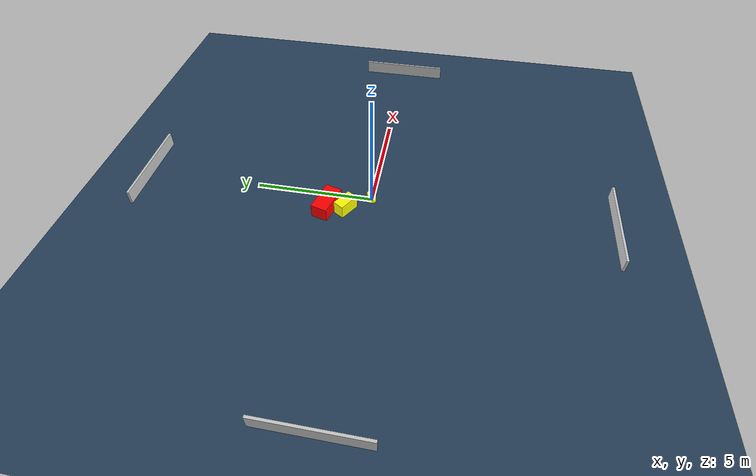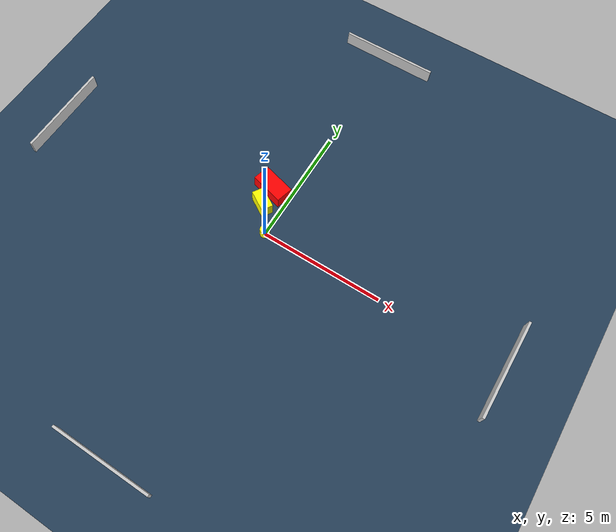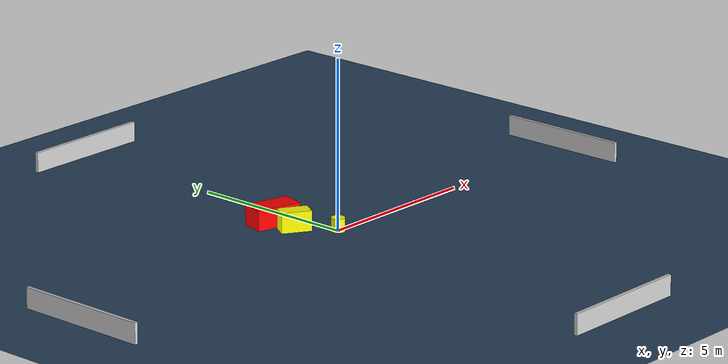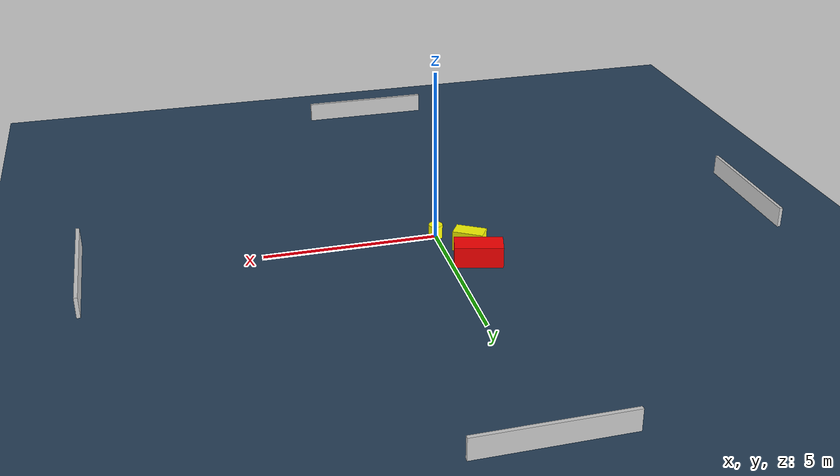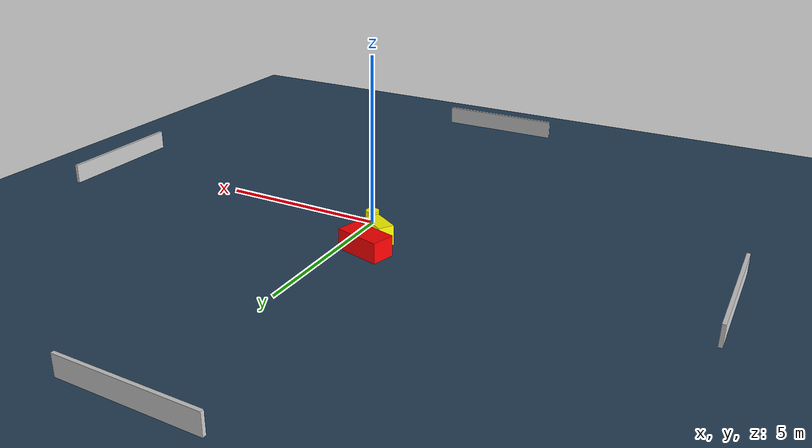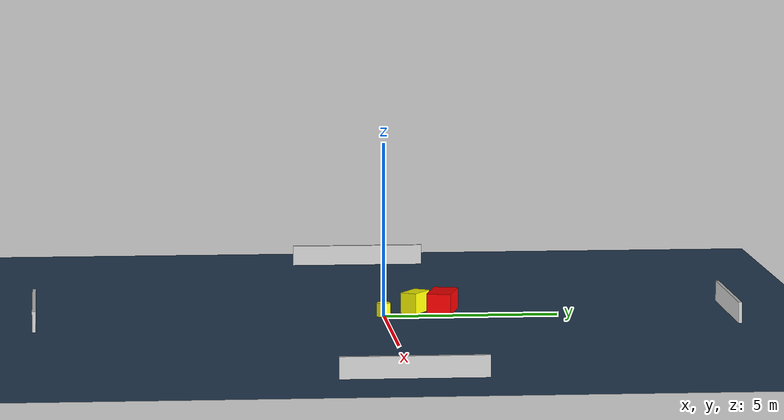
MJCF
<?xml version="1.0" ?>
<mujoco model="generated_environment">
  <option timestep="0.01" integrator="RK4" cone="elliptic"/>
  <default>
    <geom density="1"/>
  </default>
  <asset>
    <texture builtin="gradient" height="3072" name="skybox" rgb1="0.3 0.5 0.7" rgb2="0 0 0" type="skybox" width="512"/>
    <texture builtin="checker" height="300" name="groundplane" rgb1="0.2 0.3 0.4" rgb2="0.1 0.2 0.3" type="2d" width="300"/>
    <material name="groundplane" reflectance="0.2" texrepeat="5 5" texture="groundplane"/>
  </asset>
  <worldbody>
    <light dir="0 0 -1" directional="true" pos="0 0 1.5"/>
    <geom condim="3" friction="0.5 0.005 0.001" material="groundplane" name="floor" pos="0 0 0" size="0 0 0.05" type="plane"/>
    <body name="walls">
      <geom name="wall_1" condim="4" pos="-10.0 0.0 0.3" rgba="0.800000011920929 0.800000011920929 0.800000011920929 1.0" size="0.05 2.0 0.3" type="box"/>
      <geom name="wall_2" condim="4" pos="10.0 0.0 0.3" rgba="0.800000011920929 0.800000011920929 0.800000011920929 1.0" size="0.05 2.0 0.3" type="box"/>
      <geom name="wall_3" condim="4" pos="0.0 -10.0 0.3" rgba="0.800000011920929 0.800000011920929 0.800000011920929 1.0" size="2.0 0.05 0.3" type="box"/>
      <geom name="wall_4" condim="4" pos="0.0 10.0 0.3" rgba="0.800000011920929 0.800000011920929 0.800000011920929 1.0" size="2.0 0.05 0.3" type="box"/>
    </body>
    <body name="robot">
      <joint name="joint_x" type="slide" pos="0 0 0" axis="1 0 0"/>
      <joint name="joint_y" type="slide" pos="0 0 0" axis="0 1 0"/>
      <geom name="robot" type="cylinder" pos="0.0 0.0 0.2" size="0.2 0.2 0.0" mass="5.0" friction="1.0 0.005 0.0001" condim="4" rgba="1.0 1.0 0.0 1.0"/>
    </body>
    <body name="obstacle_1_movable">
      <geom name="obstacle_1_movable" condim="4" pos="-0.7402178440896879 0.9707858701513081 0.3" euler="0 0 328.1080508606704" friction="0.0 0.005 0.001" rgba="1.0 1.0 0.0 1.0" size="0.43895324182017886 0.23916440852152987 0.3" type="box" mass="0.1"/>
      <joint type="free"/>
    </body>
    <body name="obstacle_2_static">
      <geom name="obstacle_2_static" condim="4" pos="-0.7672863096171743 1.767538072712481 0.3" euler="0 0 75.03133331217124" friction="0.0 0.005 0.001" rgba="1.0 0.0 0.0 1.0" size="0.3536649296239924 0.6851504218208541 0.3" type="box"/>
    </body>
  </worldbody>
  <actuator>
    <motor name="actuator_x" joint="joint_x" gear="1" ctrlrange="-1 1"/>
    <motor name="actuator_y" joint="joint_y" gear="1" ctrlrange="-1 1"/>
  </actuator>
</mujoco>
